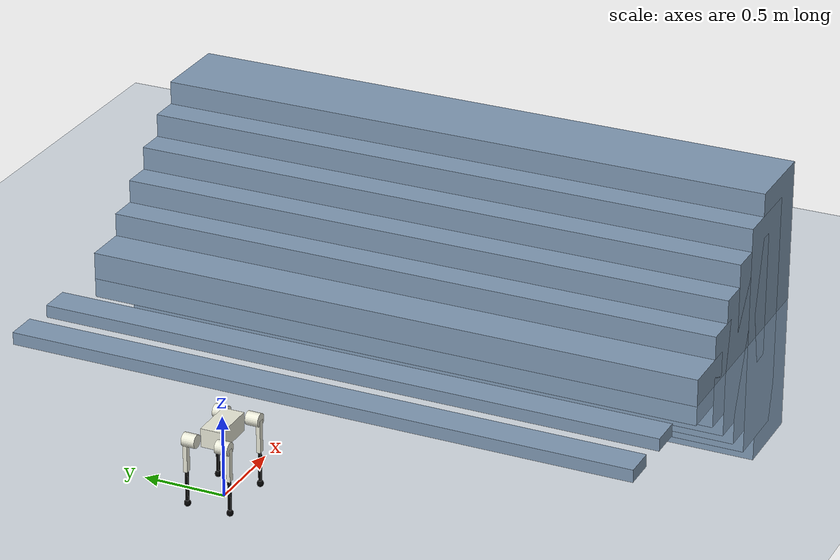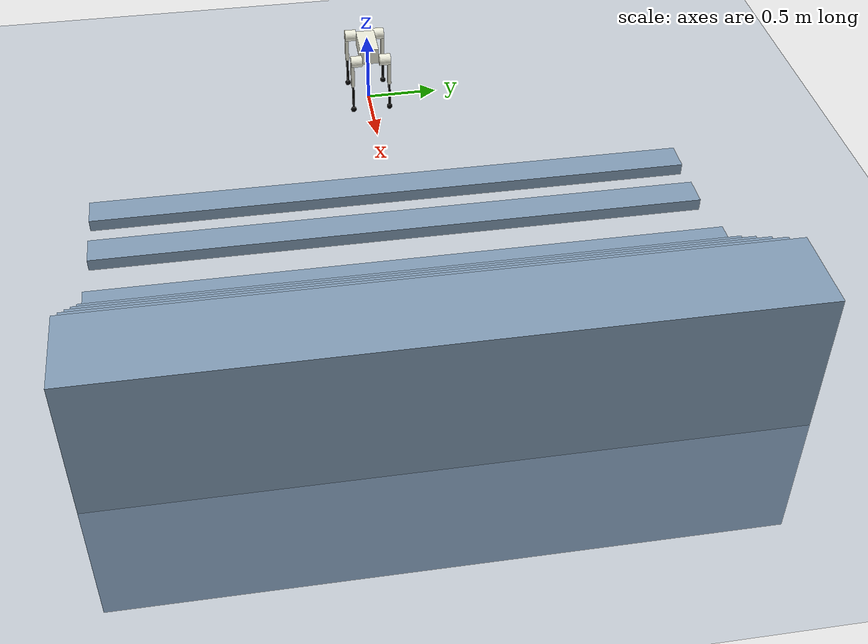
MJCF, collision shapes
<mujoco model="A1 stair scene">
  <include file="a1_scene_stair.xml"/>

  <statistic center="0 0 0.1" extent="0.8"/>

  <visual>
    <headlight diffuse="0.6 0.6 0.6" ambient="0.3 0.3 0.3" specular="0 0 0"/>
    <rgba haze="0.15 0.25 0.35 1"/>
    <global azimuth="-130" elevation="-20"/>
  </visual>

  <asset>
    <texture type="skybox" builtin="gradient" rgb1="0.3 0.5 0.7" rgb2="0 0 0" width="512" height="3072"/>
    <texture type="2d" name="groundplane" builtin="checker" mark="edge" rgb1="0.2 0.3 0.4" rgb2="0.1 0.2 0.3"
      markrgb="0.8 0.8 0.8" width="300" height="300"/>
    <material name="groundplane" texture="groundplane" texuniform="true" texrepeat="5 5" reflectance="0.2"/>
  </asset>

  <worldbody>
    <light pos="0 0 1.5" dir="0 0 -1" directional="true"/>
    <geom name="floor" size="0 0 0.05" type="plane" material="groundplane"/>

    <geom pos="1.2 0 0.04" type="box"  size="0.1 2 0.04" quat="1.0 0 0 0"/>
    <geom pos="1.6 0 0.04" type="box"  size="0.1 2 0.04" quat="1.0 0 0 0"/>

    <geom pos="2.3 0 0.02" type="box"  size="0.2 2 0.15" quat="1.0 0 0 0"/>
    <geom pos="2.6 0 0.02" type="box"  size="0.22 2 0.3" quat="1.0 0 0 0"/>
    <geom pos="2.8 0 0.02" type="box"  size="0.23 2 0.45" quat="1.0 0 0 0"/>
    <geom pos="3 0 0.02" type="box"  size="0.24 2 0.6" quat="1.0 0 0 0"/>
    <geom pos="3.2 0 0.02" type="box"  size="0.25 2 0.75" quat="1.0 0 0 0"/>
    <geom pos="3.4 0 0.02" type="box"  size="0.26 2 0.9" quat="1.0 0 0 0"/>
  </worldbody>
</mujoco>

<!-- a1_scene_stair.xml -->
<mujoco model="a1_description">
    <compiler angle="radian" meshdir="../meshes/" />
    <size njmax="500" nconmax="100" />
    <option gravity='0 0 -9.806' iterations='50' solver='Newton' timestep='0.005'/>

    <default>
        <geom contype="1" conaffinity="1" friction="1 0.3 0.3" rgba="0.5 0.6 0.7 1" margin="0.001" group="0"/>

        <light castshadow="false" diffuse="1 1 1"/>
        <motor ctrlrange="-33.5 33.5" ctrllimited="true"/>
        <camera fovy="60"/>
        <joint damping="0.00" armature="0.0" frictionloss="0.0"/>

    </default>

    <asset>
        <mesh name="trunk" file="trunk.stl" />
        <mesh name="hip" file="hip.stl" />
        <mesh name="thigh_mirror" file="thigh_mirror.stl" />
        <mesh name="calf" file="calf.stl" />
        <mesh name="thigh" file="thigh.stl" />
    </asset>

    <visual>
        <rgba com="0.502 1.0 0 0.5" contactforce="0.98 0.4 0.4 0.7" contactpoint="1.0 1.0 0.6 0.4"/>
        <scale com="0.2" forcewidth="0.035" contactwidth="0.10" contactheight="0.04"/>
    </visual>

    <worldbody>
        <light directional="true" diffuse=".8 .8 .8" pos="0 0 10" dir="0 0 -10"/>
        <camera name="track" mode="trackcom" pos="0 -1.3 1.6" xyaxes="1 0 0 0 0.707 0.707"/>

        <body name="trunk" pos="0 0 0.42">
            <inertial pos="0.0127283 0.00218554 0.000514891" quat="1 0 0 0" mass="4.714" diaginertia="0.01683993 0.0565803 0.064713601" />
            <joint type="free" />
            <geom type="mesh" contype="0" conaffinity="0" group="1" rgba="0.913725 0.913725 0.847059 1" mesh="trunk" />
            <geom size="0.1335 0.066 0.057" type="box" rgba="0.913725 0.913725 0.847059 0" />
            <geom size="0.0005 0.0005 0.0005" type="box" contype="0" conaffinity="0" group="1" rgba="0.8 0 0 0" />
            <geom size="0.0005 0.0005 0.0005" type="box" rgba="0.8 0 0 0" />
            <site name="imu" pos="0 0 0"/>

            <body name="FL_hip" pos="0.183 0.047 0">
                <inertial pos="-0.003311 0.000635 3.1e-05" quat="0.494499 0.491507 0.506268 0.507528" mass="0.696" diaginertia="0.000807752 0.00055293 0.000468983" />
                <joint name="FL_hip_joint" pos="0 0 0" axis="1 0 0" limited="true" range="-0.802851 0.802851" />
                <geom type="mesh" contype="0" conaffinity="0" group="1" rgba="0.913725 0.913725 0.847059 1" mesh="hip" />
                <geom size="0.04 0.04" pos="0 0.055 0" quat="0.707107 0.707107 0 0" type="cylinder" rgba="0.913725 0.913725 0.847059 0" />
                <body name="FL_thigh" pos="0 0.08505 0">
                    <inertial pos="-0.003237 -0.022327 -0.027326" quat="0.999125 0.00256393 -0.0409531 0.00806091" mass="1.013" diaginertia="0.00555739 0.00513936 0.00133944" />
                    <joint name="FL_thigh_joint" pos="0 0 0" axis="0 1 0" limited="true" range="-1.0472 4.18879" />
                    <geom type="mesh" contype="0" conaffinity="0" group="1" rgba="0.913725 0.913725 0.847059 1" mesh="thigh" />
                    <geom size="0.1 0.01225 0.017" pos="0 0 -0.1" quat="0.707107 0 0.707107 0" type="box" rgba="0.913725 0.913725 0.847059 0" />
                    <body name="FL_calf" pos="0 0 -0.2">
                        <inertial pos="0.00472659 0 -0.131975" quat="0.706886 0.017653 0.017653 0.706886" mass="0.226" diaginertia="0.00340344 0.00339393 3.54834e-05" />
                        <joint name="FL_calf_joint" pos="0 0 0" axis="0 1 0" limited="true" range="-2.69653 -0.916298" />
                        <geom type="mesh" contype="0" conaffinity="0" group="1" rgba="0 0 0 1" mesh="calf" />
                        <geom size="0.1 0.008 0.008" pos="0 0 -0.1" quat="0.707107 0 0.707107 0" type="box" rgba="0 0 0 0" />
                        <geom size="0.01" pos="0 0 -0.2" contype="0" conaffinity="0" group="1" rgba="0 0 0 1" />
                        <geom size="0.02" pos="0 0 -0.2" rgba="0 0 0 1" />
                    </body>
                </body>
            </body>

            <body name="FR_hip" pos="0.183 -0.047 0">
                <inertial pos="-0.003311 -0.000635 3.1e-05" quat="0.507528 0.506268 0.491507 0.494499" mass="0.696" diaginertia="0.000807752 0.00055293 0.000468983" />
                <joint name="FR_hip_joint" pos="0 0 0" axis="1 0 0" limited="true" range="-0.802851 0.802851" />
                <geom quat="0 1 0 0" type="mesh" contype="0" conaffinity="0" group="1" rgba="0.913725 0.913725 0.847059 1" mesh="hip" />
                <geom size="0.04 0.04" pos="0 -0.055 0" quat="0.707107 0.707107 0 0" type="cylinder" rgba="0.913725 0.913725 0.847059 0" />
                <body name="FR_thigh" pos="0 -0.08505 0">
                    <inertial pos="-0.003237 0.022327 -0.027326" quat="0.999125 -0.00256393 -0.0409531 -0.00806091" mass="1.013" diaginertia="0.00555739 0.00513936 0.00133944" />
                    <joint name="FR_thigh_joint" pos="0 0 0" axis="0 1 0" limited="true" range="-1.0472 4.18879" />
                    <geom type="mesh" contype="0" conaffinity="0" group="1" rgba="0.913725 0.913725 0.847059 1" mesh="thigh_mirror" />
                    <geom size="0.1 0.01225 0.017" pos="0 0 -0.1" quat="0.707107 0 0.707107 0" type="box" rgba="0.913725 0.913725 0.847059 0" />
                    <body name="FR_calf" pos="0 0 -0.2">
                        <inertial pos="0.00472659 0 -0.131975" quat="0.706886 0.017653 0.017653 0.706886" mass="0.226" diaginertia="0.00340344 0.00339393 3.54834e-05" />
                        <joint name="FR_calf_joint" pos="0 0 0" axis="0 1 0" limited="true" range="-2.69653 -0.916298" />
                        <geom type="mesh" contype="0" conaffinity="0" group="1" rgba="0 0 0 1" mesh="calf" />
                        <geom size="0.1 0.008 0.008" pos="0 0 -0.1" quat="0.707107 0 0.707107 0" type="box" rgba="0 0 0 0" />
                        <geom size="0.01" pos="0 0 -0.2" contype="0" conaffinity="0" group="1" rgba="0 0 0 1" />
                        <geom size="0.02" pos="0 0 -0.2" rgba="0 0 0 1" />
                    </body>
                </body>
            </body>

            <body name="RL_hip" pos="-0.183 0.047 0">
                <inertial pos="0.003311 0.000635 3.1e-05" quat="0.506268 0.507528 0.494499 0.491507" mass="0.696" diaginertia="0.000807752 0.00055293 0.000468983" />
                <joint name="RL_hip_joint" pos="0 0 0" axis="1 0 0" limited="true" range="-0.802851 0.802851" />
                <geom quat="0 0 1 0" type="mesh" contype="0" conaffinity="0" group="1" rgba="0.913725 0.913725 0.847059 1" mesh="hip" />
                <geom size="0.04 0.04" pos="0 0.055 0" quat="0.707107 0.707107 0 0" type="cylinder" rgba="0.913725 0.913725 0.847059 0" />
                <body name="RL_thigh" pos="0 0.08505 0">
                    <inertial pos="-0.003237 -0.022327 -0.027326" quat="0.999125 0.00256393 -0.0409531 0.00806091" mass="1.013" diaginertia="0.00555739 0.00513936 0.00133944" />
                    <joint name="RL_thigh_joint" pos="0 0 0" axis="0 1 0" limited="true" range="-1.0472 4.18879" />
                    <geom type="mesh" contype="0" conaffinity="0" group="1" rgba="0.913725 0.913725 0.847059 1" mesh="thigh" />
                    <geom size="0.1 0.01225 0.017" pos="0 0 -0.1" quat="0.707107 0 0.707107 0" type="box" rgba="0.913725 0.913725 0.847059 0" />
                    <body name="RL_calf" pos="0 0 -0.2">
                        <inertial pos="0.00472659 0 -0.131975" quat="0.706886 0.017653 0.017653 0.706886" mass="0.226" diaginertia="0.00340344 0.00339393 3.54834e-05" />
                        <joint name="RL_calf_joint" pos="0 0 0" axis="0 1 0" limited="true" range="-2.69653 -0.916298" />
                        <geom type="mesh" contype="0" conaffinity="0" group="1" rgba="0 0 0 1" mesh="calf" />
                        <geom size="0.1 0.008 0.008" pos="0 0 -0.1" quat="0.707107 0 0.707107 0" type="box" rgba="0 0 0 0" />
                        <geom size="0.01" pos="0 0 -0.2" contype="0" conaffinity="0" group="1" rgba="0 0 0 1" />
                        <geom size="0.02" pos="0 0 -0.2" rgba="0 0 0 1" />
                    </body>
                </body>
            </body>

            <body name="RR_hip" pos="-0.183 -0.047 0">
                <inertial pos="0.003311 -0.000635 3.1e-05" quat="0.491507 0.494499 0.507528 0.506268" mass="0.696" diaginertia="0.000807752 0.00055293 0.000468983" />
                <joint name="RR_hip_joint" pos="0 0 0" axis="1 0 0" limited="true" range="-0.802851 0.802851" />
                <geom quat="0 0 0 -1" type="mesh" contype="0" conaffinity="0" group="1" rgba="0.913725 0.913725 0.847059 1" mesh="hip" />
                <geom size="0.04 0.04" pos="0 -0.055 0" quat="0.707107 0.707107 0 0" type="cylinder" rgba="0.913725 0.913725 0.847059 0" />
                <body name="RR_thigh" pos="0 -0.08505 0">
                    <inertial pos="-0.003237 0.022327 -0.027326" quat="0.999125 -0.00256393 -0.0409531 -0.00806091" mass="1.013" diaginertia="0.00555739 0.00513936 0.00133944" />
                    <joint name="RR_thigh_joint" pos="0 0 0" axis="0 1 0" limited="true" range="-1.0472 4.18879" />
                    <geom type="mesh" contype="0" conaffinity="0" group="1" rgba="0.913725 0.913725 0.847059 1" mesh="thigh_mirror" />
                    <geom size="0.1 0.01225 0.017" pos="0 0 -0.1" quat="0.707107 0 0.707107 0" type="box" rgba="0.913725 0.913725 0.847059 0" />
                    <body name="RR_calf" pos="0 0 -0.2">
                        <inertial pos="0.00472659 0 -0.131975" quat="0.706886 0.017653 0.017653 0.706886" mass="0.226" diaginertia="0.00340344 0.00339393 3.54834e-05" />
                        <joint name="RR_calf_joint" pos="0 0 0" axis="0 1 0" limited="true" range="-2.69653 -0.916298" />
                        <geom type="mesh" contype="0" conaffinity="0" group="1" rgba="0 0 0 1" mesh="calf" />
                        <geom size="0.1 0.008 0.008" pos="0 0 -0.1" quat="0.707107 0 0.707107 0" type="box" rgba="0 0 0 0" />
                        <geom size="0.01" pos="0 0 -0.2" contype="0" conaffinity="0" group="1" rgba="0 0 0 1" />
                        <geom size="0.02" pos="0 0 -0.2" rgba="0 0 0 1" />
                    </body>
                </body>
            </body>

        </body>

    </worldbody>

    <actuator>

        <motor name="FL_hip"     gear="1" ctrllimited="true" ctrlrange="-20 20" joint="FL_hip_joint"/>
        <motor name="FL_thigh"     gear="1" ctrllimited="true" ctrlrange="-55 55" joint="FL_thigh_joint"/>
        <motor name="FL_calf"     gear="1" ctrllimited="true" ctrlrange="-55 55" joint="FL_calf_joint"/>

        <motor name="FR_hip"       gear="1" ctrllimited="true" ctrlrange="-20 20" joint="FR_hip_joint"/>
        <motor name="FR_thigh"       gear="1" ctrllimited="true" ctrlrange="-55 55" joint="FR_thigh_joint"/>
        <motor name="FR_calf"       gear="1" ctrllimited="true" ctrlrange="-55 55" joint="FR_calf_joint"/>

        <motor name="RL_hip"      gear="1" ctrllimited="true" ctrlrange="-20 20" joint="RL_hip_joint"/>
        <motor name="RL_thigh"      gear="1" ctrllimited="true" ctrlrange="-55 55" joint="RL_thigh_joint"/>
        <motor name="RL_calf"      gear="1" ctrllimited="true" ctrlrange="-55 55" joint="RL_calf_joint"/>

        <motor name="RR_hip"      gear="1" ctrllimited="true" ctrlrange="-20 20" joint="RR_hip_joint"/>
        <motor name="RR_thigh"   gear="1" ctrllimited="true" ctrlrange="-55 55" joint="RR_thigh_joint"/>
        <motor name="RR_calf"   gear="1" ctrllimited="true" ctrlrange="-55 55" joint="RR_calf_joint" />

    </actuator>

    <sensor>

        <accelerometer name="Body_Acc" site="imu"/>

        <gyro name="Body_Gyro" site="imu"/>

        <velocimeter name="Body_Vel" site="imu" />

        <framepos name="Body_Pos" objtype="site" objname="imu"/>

        <framequat name="Body_Quat" objtype="site" objname="imu"/>

    </sensor>

</mujoco>
